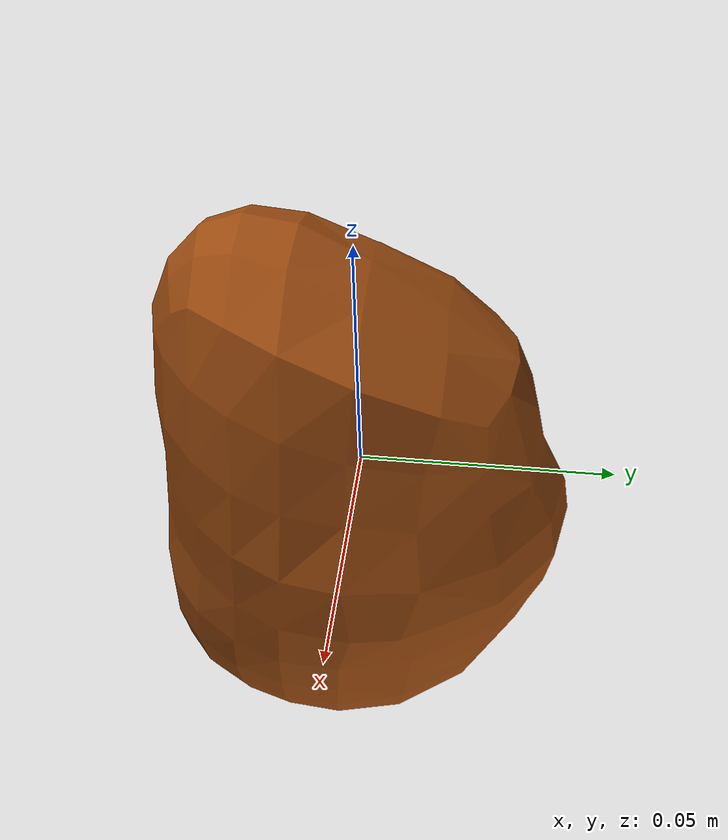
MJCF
<mujoco model="Potato_5">
  <compiler autolimits="true" boundmass="0.01" angle="radian"/>
  <default>
    <default class="/">
      <default class="__VISUAL_MJT__">
        <geom contype="0" conaffinity="0" group="0"/>
      </default>
      <default class="__STRUCTURAL_MJT__">
        <geom contype="8" conaffinity="15" group="4" friction="0.90000000000000002 0.90000000000000002 0.001" solref="0.025000000000000001 1" solimp="0.998 0.998 0.001"/>
      </default>
      <default class="__DYNAMIC_MJT__">
        <geom contype="1" conaffinity="15" group="4" friction="0.90000000000000002 0.90000000000000002 0.001" solref="0.025000000000000001 1" solimp="0.998 0.998 0.001"/>
      </default>
    </default>
  </default>
  <asset>
    <texture name="Potato1_Mat5" type="2d" file="Potato1_AlbedoTransparency.png"/>
    <material name="material_Potato1_Mat5" class="/" texture="Potato1_Mat5" specular="0.5" shininess="0.5" rgba="0.82352939999999997 0.41259990000000002 0.096885810000000003 1"/>
    <mesh name="Potato_5_potato_a5" class="/" file="Potato_5_potato_a5/Potato_5_potato_a5.obj" scale="1 1 1"/>
  </asset>
  <worldbody>
    <body name="Potato_5">
      <joint name="Potato_5_free" class="/" type="free" pos="0 0 0" axis="0 0 1" stiffness="0" range="0 0" armature="0" damping="0.10000000000000001" frictionloss="0"/>
      <body name="Potato_5_potato_a5" pos="0.0015200000000000001 0.0016100000000000001 -0.01201" quat="1 0 0 0">
        <geom name="Potato_5_potato_a5" class="__VISUAL_MJT__" type="mesh" material="material_Potato1_Mat5" shellinertia="true" mesh="Potato_5_potato_a5"/>
        <geom name="Potato_5_PrimitiveCollider_0" class="__DYNAMIC_MJT__" type="capsule" size="0.038398250937461853 0.023071959614753723" rgba="0 1 0 1" pos="0.0015185177326202393 -0.0016061569331213832 0.012005428783595562" quat="-0.01535848011694403 0.99988205158833487 0 0"/>
      </body>
    </body>
  </worldbody>
</mujoco>
